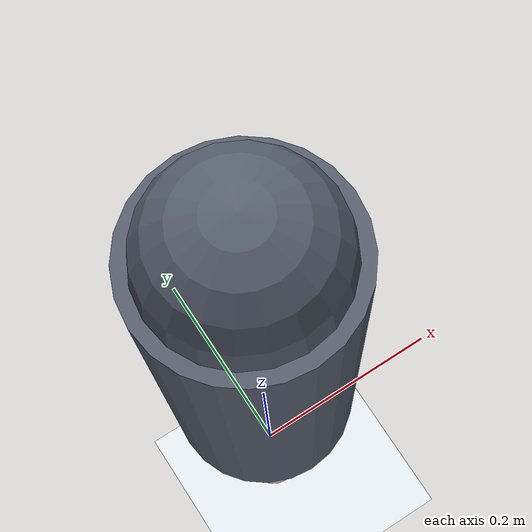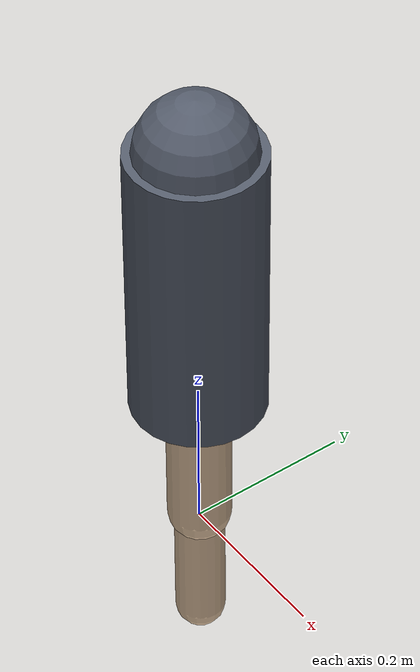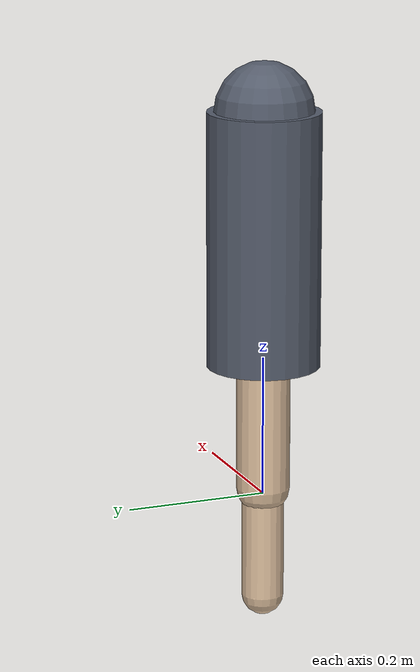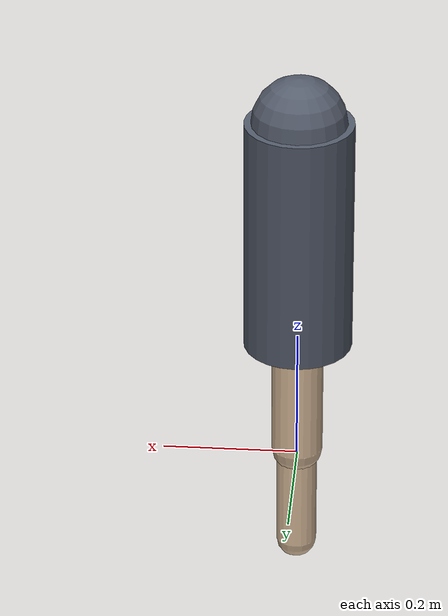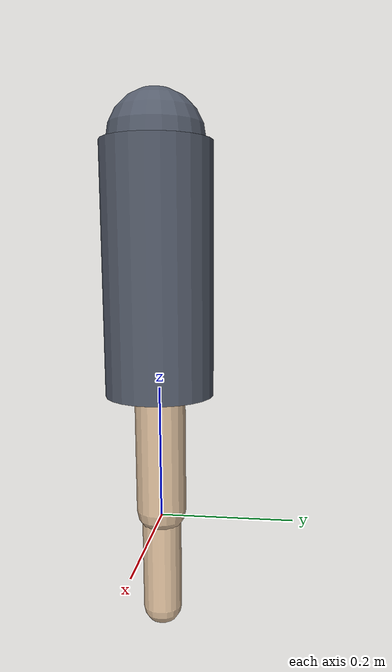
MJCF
<mujoco model="human_arm_demo">
  <compiler angle="degree" autolimits="true"/>

  <option timestep="0.01" gravity="0 0 -9.81"/>

  <visual>
    <headlight diffuse="0.8 0.8 0.8" ambient="0.25 0.25 0.25" specular="0.2 0.2 0.2"/>
    <rgba haze="0.15 0.2 0.25 1"/>
  </visual>

  <asset>
    <texture type="skybox" builtin="gradient" rgb1="0.95 0.97 1" rgb2="0.73 0.84 0.95" width="256" height="256"/>
    <material name="bone" rgba="0.87 0.75 0.62 1"/>
    <material name="joint" rgba="0.33 0.36 0.42 1"/>
    <material name="floor" rgba="0.88 0.9 0.92 1"/>
  </asset>

  <default>
    <default class="arm">
      <joint damping="2.5" armature="0.02" limited="true"/>
      <geom type="capsule" density="950" friction="0.8 0.1 0.1" material="bone"/>
    </default>
    <default class="servo">
      <position kp="35" kv="7" ctrlrange="-2 2" forcerange="-80 80"/>
    </default>
  </default>

  <worldbody>
    <light pos="0 0 2.2" dir="0 0 -1"/>
    <geom name="floor" type="plane" pos="0 0 -0.75" size="2 2 0.1" material="floor"/>

    <body name="torso_anchor" pos="0 0 0.55">
      <geom name="pedestal" type="cylinder" pos="0 0 -0.18" size="0.08 0.18" material="joint"/>
      <geom name="shoulder_socket" type="sphere" size="0.07" material="joint"/>

      <body name="upper_arm">
        <joint name="shoulder_pitch" class="arm" type="hinge" axis="1 0 0" range="-90 90"/>
        <joint name="shoulder_yaw" class="arm" type="hinge" axis="0 1 0" range="-110 110"/>
        <joint name="shoulder_roll" class="arm" type="hinge" axis="0 0 1" range="-80 80"/>
        <geom name="upper_arm_geom" class="arm" fromto="0 0 0 0 0 -0.28" size="0.045"/>

        <body name="forearm" pos="0 0 -0.28">
          <geom name="elbow_joint" type="sphere" size="0.045" material="joint"/>
          <joint name="elbow_flex" class="arm" type="hinge" axis="0 1 0" range="0 140"/>
          <geom name="forearm_geom" class="arm" fromto="0 0 0 0 0 -0.26" size="0.038"/>

          <body name="hand" pos="0 0 -0.26">
            <geom name="wrist_joint" type="sphere" size="0.035" material="joint"/>
            <joint name="wrist_pitch" class="arm" type="hinge" axis="1 0 0" range="-55 55"/>
            <joint name="wrist_yaw" class="arm" type="hinge" axis="0 1 0" range="-35 35"/>
            <geom name="hand_geom" class="arm" fromto="0 0 0 0 0 -0.16" size="0.03"/>
          </body>
        </body>
      </body>
    </body>
  </worldbody>

  <actuator>
    <position name="shoulder_pitch_servo" class="servo" joint="shoulder_pitch" ctrlrange="-1.4 1.4"/>
    <position name="shoulder_yaw_servo" class="servo" joint="shoulder_yaw" ctrlrange="-1.8 1.8"/>
    <position name="shoulder_roll_servo" class="servo" joint="shoulder_roll" ctrlrange="-1.2 1.2"/>
    <position name="elbow_flex_servo" class="servo" joint="elbow_flex" ctrlrange="0 2.3"/>
    <position name="wrist_pitch_servo" class="servo" joint="wrist_pitch" ctrlrange="-0.9 0.9"/>
    <position name="wrist_yaw_servo" class="servo" joint="wrist_yaw" ctrlrange="-0.6 0.6"/>
  </actuator>

  <keyframe>
    <key name="home" qpos="0 0 0 0.8 0 0"/>
  </keyframe>
</mujoco>
